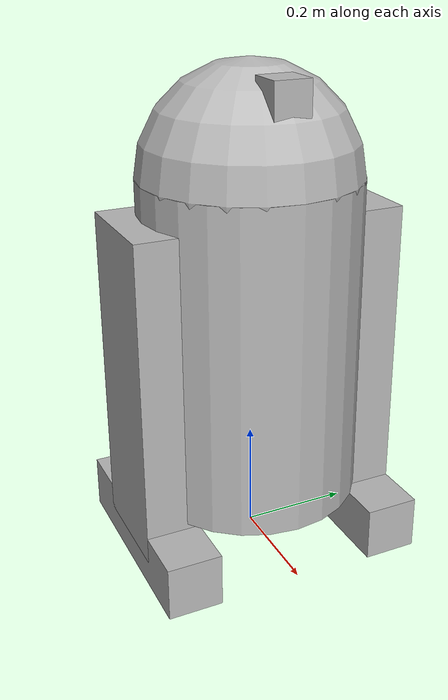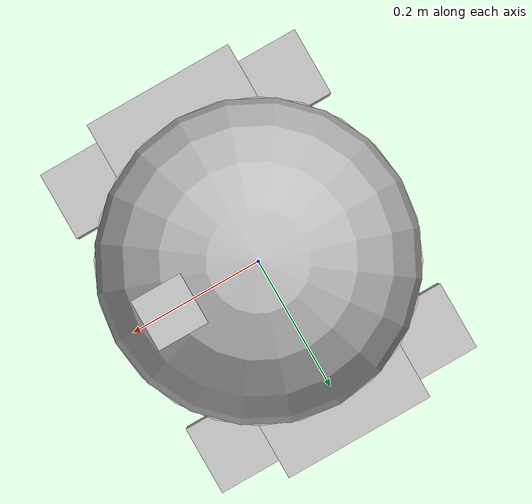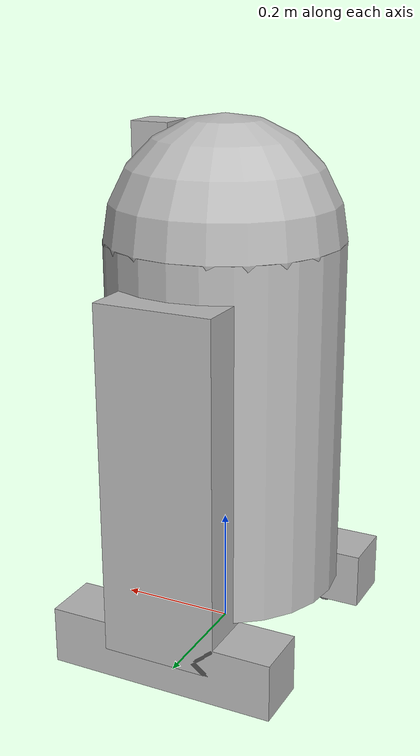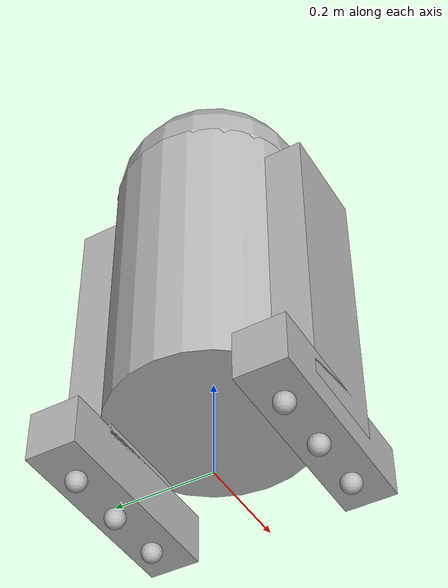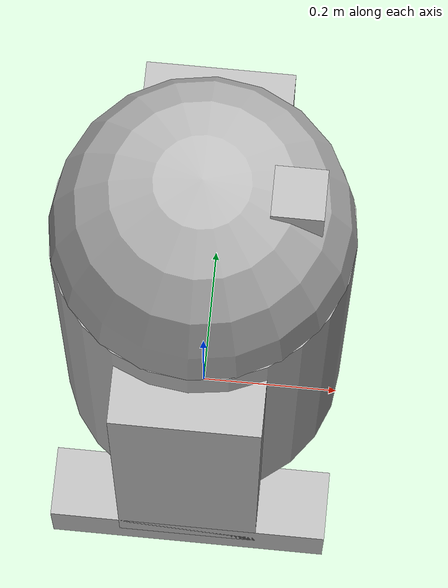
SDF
<?xml version='1.0'?>
<sdf version='1.7'>

<model name="r2d2">

  <!-- link: base_footprint -->
  <link name="base_footprint"/>
  <!-- link: base -->
  <link name="base_link">
    <pose relative_to="base_footprint">0 0 0.39999999999999997 0 0 0</pose>
    <visual name="visual">
      <pose relative_to="base_link">0 0 0 0 0 0</pose>
      <geometry>
        <cylinder>
          <radius>0.19999999999999998</radius>
          <length>0.6</length>
        </cylinder>
      </geometry>
    </visual>
    <collision name="collision">
      <pose relative_to="base_link">0 0 0 0 0 0</pose>
      <geometry>
        <cylinder>
          <radius>0.19999999999999998</radius>
          <length>0.6</length>
        </cylinder>
      </geometry>
    </collision>
    <inertial>
      <mass>3.5</mass>
      <inertia>
        <ixx>0.13999999999999999</ixx>
        <ixy>0.0</ixy>
        <ixz>0.0</ixz>
        <iyy>0.13999999999999999</iyy>
        <iyz>0.0</iyz>
        <izz>0.06999999999999999</izz>
      </inertia>
    </inertial>
  </link>
  <!-- joint: base_footprint -> base -->
  <joint name="joint_base_footprint_to_base" type="fixed">
    <parent>base_footprint</parent>
    <child>base_link</child>
  </joint>
  <!-- link: head -->
  <link name="head">
    <pose relative_to="base_link">0 0 0.3 0 0 0</pose>
    <visual name="visual">
      <pose relative_to="head">0 0 0 0 0 0</pose>
      <geometry>
        <sphere>
          <radius>0.19999999999999998</radius>
        </sphere>
      </geometry>
    </visual>
    <collision name="collision">
      <pose relative_to="head">0 0 0 0 0 0</pose>
      <geometry>
        <sphere>
          <radius>0.19999999999999998</radius>
        </sphere>
      </geometry>
    </collision>
    <inertial>
      <mass>0.5</mass>
      <inertia>
        <ixx>0.008</ixx>
        <ixy>0.0</ixy>
        <ixz>0.0</ixz>
        <iyy>0.008</iyy>
        <iyz>0.0</iyz>
        <izz>0.008</izz>
      </inertia>
    </inertial>
  </link>
  <!-- link: head_box -->
  <link name="head_box">
    <pose relative_to="head">0.12 0 0.15 0 0 0</pose>
    <visual name="visual">
      <pose relative_to="head_box">0 0 0 0 0 0</pose>
      <geometry>
        <box>
          <size>0.06666666666666667 0.06666666666666667 0.06666666666666667</size>
        </box>
      </geometry>
    </visual>
    <collision name="collision">
      <pose relative_to="head_box">0 0 0 0 0 0</pose>
      <geometry>
        <box>
          <size>0.06666666666666667 0.06666666666666667 0.06666666666666667</size>
        </box>
      </geometry>
    </collision>
    <inertial>
      <mass>0.005</mass>
      <inertia>
        <ixx>3.7037037037037033e-06</ixx>
        <ixy>0.0</ixy>
        <ixz>0.0</ixz>
        <iyy>3.7037037037037033e-06</iyy>
        <iyz>0.0</iyz>
        <izz>3.7037037037037033e-06</izz>
      </inertia>
    </inertial>
            <sensor type="camera" name="camera1">
          <update_rate>60</update_rate>
          <visualize>true</visualize>
          <camera name="head">
            <horizontal_fov>1.3962634</horizontal_fov>
            <image>
              <width>640</width>
              <height>480</height>
              <format>R8G8B8</format>
            </image>
            <clip>
              <near>0.02</near>
              <far>300</far>
            </clip>
            <noise>
              <type>gaussian</type>
              <mean>0.0</mean>
              <stddev>0.007</stddev>
            </noise>
          </camera>
          <plugin name="camera_controller" filename="libgazebo_ros_camera.so">
            <ros>
              <!-- TODO(louise) Remapping not working due to https://github.com/ros-perception/image_common/issues/93 -->
            </ros>
          </plugin>
        </sensor>
  </link>
  <!-- joint: base -> head -->
  <joint name="joint_base_to_head" type="revolute">
    <parent>base_link</parent>
    <child>head</child>
    <axis>
      <xyz>0 0 1</xyz>
      <limit>
        <effort>30</effort>
        <velocity>0.5</velocity>
        <lower>-1.570796325</lower>
        <upper>1.570796325</upper>
      </limit>
    </axis>
  </joint>
  <!-- joint: head -> head_box -->
  <joint name="joint_head_to_head_box" type="fixed">
    <parent>head</parent>
    <child>head_box</child>
  </joint>
  <!-- link: leg -->
  <link name="right_leg">
    <pose relative_to="base_link">0  0.19999999999999998 -0.06 0 0 0</pose>
    <visual name="visual">
      <pose relative_to="right_leg">0 0 0 0 0 0</pose>
      <geometry>
        <box>
          <size>0.19999999999999998 0.09999999999999999 0.6</size>
        </box>
      </geometry>
    </visual>
    <collision name="collision">
      <pose relative_to="right_leg">0 0 0 0 0 0</pose>
      <geometry>
        <box>
          <size>0.19999999999999998 0.09999999999999999 0.6</size>
        </box>
      </geometry>
    </collision>
    <inertial>
      <mass>0.5</mass>
      <inertia>
        <ixx>0.015416666666666665</ixx>
        <ixy>0.0</ixy>
        <ixz>0.0</ixz>
        <iyy>0.016666666666666663</iyy>
        <iyz>0.0</iyz>
        <izz>0.002083333333333333</izz>
      </inertia>
    </inertial>
  </link>
  <!-- link: leg_base -->
  <link name="right_leg_base">
    <pose relative_to="right_leg">0 0 -0.3 0 0 0</pose>
    <visual name="visual">
      <pose relative_to="right_leg_base">0 0 0 0 0 0</pose>
      <geometry>
        <box>
          <size>0.39999999999999997 0.09999999999999999 0.09999999999999999</size>
        </box>
      </geometry>
    </visual>
    <collision name="collision">
      <pose relative_to="right_leg_base">0 0 0 0 0 0</pose>
      <geometry>
        <box>
          <size>0.39999999999999997 0.09999999999999999 0.09999999999999999</size>
        </box>
      </geometry>
    </collision>
    <inertial>
      <mass>1.5</mass>
      <inertia>
        <ixx>0.0024999999999999996</ixx>
        <ixy>0.0</ixy>
        <ixz>0.0</ixz>
        <iyy>0.021249999999999998</iyy>
        <iyz>0.0</iyz>
        <izz>0.021249999999999998</izz>
      </inertia>
    </inertial>
  </link>
  <!-- joint: parent -> leg -->
  <joint name="base_to_right_leg" type="fixed">
    <parent>base_link</parent>
    <child>right_leg</child>
  </joint>
  <!-- joint: leg -> leg_base -->
  <joint name="right_leg_to_right_leg_base" type="fixed">
    <parent>right_leg</parent>
    <child>right_leg_base</child>
  </joint>
  <!-- link: wheel -->
  <link name="right_front_wheel">
    <pose relative_to="right_leg_base">0.12 0 -0.06 0 0 0</pose>
    <visual name="visual">
      <pose relative_to="right_front_wheel">0 0 0 0 0 0</pose>
      <geometry>
        <sphere>
          <radius>0.019999999999999997</radius>
        </sphere>
      </geometry>
    </visual>
    <collision name="collision">
      <pose relative_to="right_front_wheel">0 0 0 0 0 0</pose>
      <geometry>
        <sphere>
          <radius>0.019999999999999997</radius>
        </sphere>
      </geometry>
    </collision>
    <inertial>
      <mass>0.5</mass>
      <inertia>
        <ixx>7.999999999999997e-05</ixx>
        <ixy>0.0</ixy>
        <ixz>0.0</ixz>
        <iyy>7.999999999999997e-05</iyy>
        <iyz>0.0</iyz>
        <izz>7.999999999999997e-05</izz>
      </inertia>
    </inertial>
  </link>
  <!-- joint: parent_base -> wheel -->
  <joint name="right_leg_base_to_right_front_wheel" type="revolute">
    <parent>right_leg_base</parent>
    <child>right_front_wheel</child>
    <axis>
      <xyz>0 1 0</xyz>
    </axis>
  </joint>
  <!-- link: wheel -->
  <link name="right_center_wheel">
    <pose relative_to="right_leg_base">0 0 -0.06122448979591836 0 0 0</pose>
    <visual name="visual">
      <pose relative_to="right_center_wheel">0 0 0 0 0 0</pose>
      <geometry>
        <sphere>
          <radius>0.019999999999999997</radius>
        </sphere>
      </geometry>
    </visual>
    <collision name="collision">
      <pose relative_to="right_center_wheel">0 0 0 0 0 0</pose>
      <geometry>
        <sphere>
          <radius>0.019999999999999997</radius>
        </sphere>
      </geometry>
    </collision>
    <inertial>
      <mass>0.5</mass>
      <inertia>
        <ixx>7.999999999999997e-05</ixx>
        <ixy>0.0</ixy>
        <ixz>0.0</ixz>
        <iyy>7.999999999999997e-05</iyy>
        <iyz>0.0</iyz>
        <izz>7.999999999999997e-05</izz>
      </inertia>
    </inertial>
  </link>
  <!-- joint: parent_base -> wheel -->
  <joint name="right_leg_base_to_right_center_wheel" type="revolute">
    <parent>right_leg_base</parent>
    <child>right_center_wheel</child>
    <axis>
      <xyz>0 1 0</xyz>
    </axis>
  </joint>
  <!-- link: wheel -->
  <link name="right_back_wheel">
    <pose relative_to="right_leg_base">-0.12 0 -0.06 0 0 0</pose>
    <visual name="visual">
      <pose relative_to="right_back_wheel">0 0 0 0 0 0</pose>
      <geometry>
        <sphere>
          <radius>0.019999999999999997</radius>
        </sphere>
      </geometry>
    </visual>
    <collision name="collision">
      <pose relative_to="right_back_wheel">0 0 0 0 0 0</pose>
      <geometry>
        <sphere>
          <radius>0.019999999999999997</radius>
        </sphere>
      </geometry>
    </collision>
    <inertial>
      <mass>0.5</mass>
      <inertia>
        <ixx>7.999999999999997e-05</ixx>
        <ixy>0.0</ixy>
        <ixz>0.0</ixz>
        <iyy>7.999999999999997e-05</iyy>
        <iyz>0.0</iyz>
        <izz>7.999999999999997e-05</izz>
      </inertia>
    </inertial>
  </link>
  <!-- joint: parent_base -> wheel -->
  <joint name="right_leg_base_to_right_back_wheel" type="revolute">
    <parent>right_leg_base</parent>
    <child>right_back_wheel</child>
    <axis>
      <xyz>0 1 0</xyz>
    </axis>
  </joint>
  <!-- link: leg -->
  <link name="left_leg">
    <pose relative_to="base_link">0 -0.19999999999999998 -0.06 0 0 0</pose>
    <visual name="visual">
      <pose relative_to="left_leg">0 0 0 0 0 0</pose>
      <geometry>
        <box>
          <size>0.19999999999999998 0.09999999999999999 0.6</size>
        </box>
      </geometry>
    </visual>
    <collision name="collision">
      <pose relative_to="left_leg">0 0 0 0 0 0</pose>
      <geometry>
        <box>
          <size>0.19999999999999998 0.09999999999999999 0.6</size>
        </box>
      </geometry>
    </collision>
    <inertial>
      <mass>0.5</mass>
      <inertia>
        <ixx>0.015416666666666665</ixx>
        <ixy>0.0</ixy>
        <ixz>0.0</ixz>
        <iyy>0.016666666666666663</iyy>
        <iyz>0.0</iyz>
        <izz>0.002083333333333333</izz>
      </inertia>
    </inertial>
  </link>
  <!-- link: leg_base -->
  <link name="left_leg_base">
    <pose relative_to="left_leg">0 0 -0.3 0 0 0</pose>
    <visual name="visual">
      <pose relative_to="left_leg_base">0 0 0 0 0 0</pose>
      <geometry>
        <box>
          <size>0.39999999999999997 0.09999999999999999 0.09999999999999999</size>
        </box>
      </geometry>
    </visual>
    <collision name="collision">
      <pose relative_to="left_leg_base">0 0 0 0 0 0</pose>
      <geometry>
        <box>
          <size>0.39999999999999997 0.09999999999999999 0.09999999999999999</size>
        </box>
      </geometry>
    </collision>
    <inertial>
      <mass>1.5</mass>
      <inertia>
        <ixx>0.0024999999999999996</ixx>
        <ixy>0.0</ixy>
        <ixz>0.0</ixz>
        <iyy>0.021249999999999998</iyy>
        <iyz>0.0</iyz>
        <izz>0.021249999999999998</izz>
      </inertia>
    </inertial>
  </link>
  <!-- joint: parent -> leg -->
  <joint name="base_to_left_leg" type="fixed">
    <parent>base_link</parent>
    <child>left_leg</child>
  </joint>
  <!-- joint: leg -> leg_base -->
  <joint name="left_leg_to_left_leg_base" type="fixed">
    <parent>left_leg</parent>
    <child>left_leg_base</child>
  </joint>
  <!-- link: wheel -->
  <link name="left_front_wheel">
    <pose relative_to="left_leg_base">0.12 0 -0.06 0 0 0</pose>
    <visual name="visual">
      <pose relative_to="left_front_wheel">0 0 0 0 0 0</pose>
      <geometry>
        <sphere>
          <radius>0.019999999999999997</radius>
        </sphere>
      </geometry>
    </visual>
    <collision name="collision">
      <pose relative_to="left_front_wheel">0 0 0 0 0 0</pose>
      <geometry>
        <sphere>
          <radius>0.019999999999999997</radius>
        </sphere>
      </geometry>
    </collision>
    <inertial>
      <mass>0.5</mass>
      <inertia>
        <ixx>7.999999999999997e-05</ixx>
        <ixy>0.0</ixy>
        <ixz>0.0</ixz>
        <iyy>7.999999999999997e-05</iyy>
        <iyz>0.0</iyz>
        <izz>7.999999999999997e-05</izz>
      </inertia>
    </inertial>
  </link>
  <!-- joint: parent_base -> wheel -->
  <joint name="left_leg_base_to_left_front_wheel" type="revolute">
    <parent>left_leg_base</parent>
    <child>left_front_wheel</child>
    <axis>
      <xyz>0 1 0</xyz>
    </axis>
  </joint>
  <!-- link: wheel -->
  <link name="left_center_wheel">
    <pose relative_to="left_leg_base">0 0 -0.06122448979591836 0 0 0</pose>
    <visual name="visual">
      <pose relative_to="left_center_wheel">0 0 0 0 0 0</pose>
      <geometry>
        <sphere>
          <radius>0.019999999999999997</radius>
        </sphere>
      </geometry>
    </visual>
    <collision name="collision">
      <pose relative_to="left_center_wheel">0 0 0 0 0 0</pose>
      <geometry>
        <sphere>
          <radius>0.019999999999999997</radius>
        </sphere>
      </geometry>
    </collision>
    <inertial>
      <mass>0.5</mass>
      <inertia>
        <ixx>7.999999999999997e-05</ixx>
        <ixy>0.0</ixy>
        <ixz>0.0</ixz>
        <iyy>7.999999999999997e-05</iyy>
        <iyz>0.0</iyz>
        <izz>7.999999999999997e-05</izz>
      </inertia>
    </inertial>
  </link>
  <!-- joint: parent_base -> wheel -->
  <joint name="left_leg_base_to_left_center_wheel" type="revolute">
    <parent>left_leg_base</parent>
    <child>left_center_wheel</child>
    <axis>
      <xyz>0 1 0</xyz>
    </axis>
  </joint>
  <!-- link: wheel -->
  <link name="left_back_wheel">
    <pose relative_to="left_leg_base">-0.12 0 -0.06 0 0 0</pose>
    <visual name="visual">
      <pose relative_to="left_back_wheel">0 0 0 0 0 0</pose>
      <geometry>
        <sphere>
          <radius>0.019999999999999997</radius>
        </sphere>
      </geometry>
    </visual>
    <collision name="collision">
      <pose relative_to="left_back_wheel">0 0 0 0 0 0</pose>
      <geometry>
        <sphere>
          <radius>0.019999999999999997</radius>
        </sphere>
      </geometry>
    </collision>
    <inertial>
      <mass>0.5</mass>
      <inertia>
        <ixx>7.999999999999997e-05</ixx>
        <ixy>0.0</ixy>
        <ixz>0.0</ixz>
        <iyy>7.999999999999997e-05</iyy>
        <iyz>0.0</iyz>
        <izz>7.999999999999997e-05</izz>
      </inertia>
    </inertial>
  </link>
  <!-- joint: parent_base -> wheel -->
  <joint name="left_leg_base_to_left_back_wheel" type="revolute">
    <parent>left_leg_base</parent>
    <child>left_back_wheel</child>
    <axis>
      <xyz>0 1 0</xyz>
    </axis>
  </joint>

      <plugin name='diff_drive' filename='libgazebo_ros_diff_drive.so'>

        <ros>
        </ros>

        <update_rate>30</update_rate>
        <command_topic>cmd_vel</command_topic>

        <!-- wheels -->
        <left_joint>left_leg_base_to_left_center_wheel</left_joint>
        <right_joint>right_leg_base_to_right_center_wheel</right_joint>

        <!-- kinematics -->
        <wheel_separation>0.4</wheel_separation>
        <wheel_diameter>0.04</wheel_diameter>

        <!-- limits -->
        <max_wheel_torque>20</max_wheel_torque>
        <max_wheel_acceleration>1.0</max_wheel_acceleration>

        <!-- output -->
        <publish_odom>true</publish_odom>
        <publish_odom_tf>true</publish_odom_tf>
        <publish_wheel_tf>false</publish_wheel_tf>

        <odometry_topic>odom</odometry_topic>
        <odometry_frame>odom</odometry_frame>
        <robot_base_frame>base_footprint</robot_base_frame>

      </plugin>

  <!-- laser -->
  <joint name="base_to_laser" type="fixed">
    <parent>base_link</parent>
    <child>base_scan</child>
  </joint>
  <link name="base_scan">
    <pose relative_to="base_link">0.11 0 -0.3 0 0 0</pose>
    <sensor name="laser" type="ray">
      <ray>
        <scan>
          <horizontal>
            <samples>180</samples>
            <resolution>1.0</resolution>
            <min_angle>-1.57</min_angle>
            <max_angle>1.57</max_angle>
          </horizontal>
        </scan>
        <range>
          <min>0.2</min>
          <max>10.0</max>
          <resolution>0.015000</resolution>
        </range>
      </ray>
      <always_on>true</always_on>
      <update_rate>100</update_rate>
      <visualize>true</visualize>
      <plugin name="laserscan" filename="libgazebo_ros_ray_sensor.so">
        <ros>
          <remapping>~/out:=scan</remapping>
        </ros>
        <output_type>sensor_msgs/LaserScan</output_type>
        <frame_name>base_scan</frame_name>
      </plugin>
    </sensor>

  </link>

    <plugin name="joint_state" filename="libgazebo_ros_joint_state_publisher.so">
      <ros>
      </ros>
      <update_rate>30</update_rate>
      <joint_name>left_leg_base_to_left_center_wheel</joint_name>
      <joint_name>right_leg_base_to_right_center_wheel</joint_name>
    </plugin>

  </model>
</sdf>
